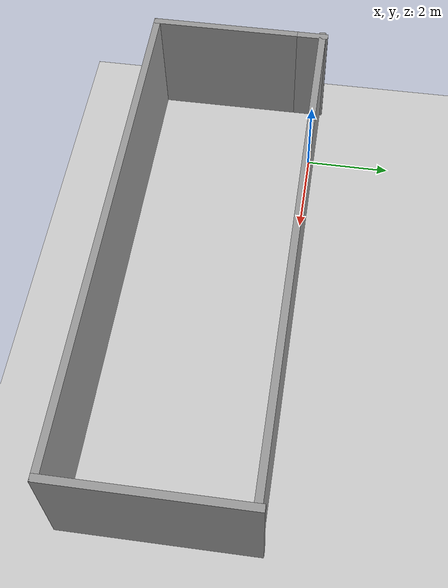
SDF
<sdf version="1.7">
 <world name="default">
  <light name="sun" type="directional">
   <pose>0 0 10 0 -0 0</pose>
   <diffuse>0.8 0.8 0.8 1</diffuse>
   <specular>0.2 0.2 0.2 1</specular>
   <attenuation>
    <range>1000</range>
    <constant>0.9</constant>
    <linear>0.01</linear>
    <quadratic>0.001</quadratic>
   </attenuation>
   <direction>-0.5 0.1 -0.9</direction>
   <spot><inner_angle>0</inner_angle><outer_angle>0</outer_angle><falloff>0</falloff></spot>
  </light>
  <model name="ground_plane">
   <static>1</static>
   <link name="link">
    <collision name="collision">
     <geometry><plane><normal>0 0 1</normal><size>100 100</size></plane></geometry>
     <surface>
      <contact><collide_bitmask>65535</collide_bitmask></contact>
      <friction><ode><mu>100</mu><mu2>50</mu2></ode></friction>
     </surface>
    </collision>
    <visual name="visual">
     <cast_shadows>0</cast_shadows>
     <geometry><plane><normal>0 0 1</normal><size>100 100</size></plane></geometry>
     <material>
      <script><uri>file://media/materials/scripts/gazebo.material</uri><name>Gazebo/Grey</name></script>
     </material>
    </visual>
   </link>
  </model>
  <gravity>0 0 -9.8</gravity>
  <magnetic_field>6e-06 2.3e-05 -4.2e-05</magnetic_field>
  <atmosphere type="adiabatic"/>
  <physics type="ode">
   <max_step_size>0.001</max_step_size>
   <real_time_factor>1</real_time_factor>
   <real_time_update_rate>1000</real_time_update_rate>
  </physics>
  <scene><ambient>0.4 0.4 0.4 1</ambient><background>0.7 0.7 0.7 1</background><shadows>1</shadows></scene>
  <audio><device>default</device></audio>
  <spherical_coordinates>
   <surface_model>EARTH_WGS84</surface_model>
   <latitude_deg>0</latitude_deg>
   <longitude_deg>0</longitude_deg>
   <elevation>0</elevation>
   <heading_deg>0</heading_deg>
  </spherical_coordinates>
  <model name="Untitled">
   <pose>5.09999 -1.4264 1.58281 0 -0 0</pose>
   <link name="Wall_0">
    <collision name="Wall_0_Collision">
     <geometry><box><size>3.25 0.15 2.5</size></box></geometry>
     <pose>0 0 1.25 0 -0 0</pose>
    </collision>
    <visual name="Wall_0_Visual">
     <pose>0 0 1.25 0 -0 0</pose>
     <geometry><box><size>3.25 0.15 2.5</size></box></geometry>
     <material>
      <script><uri>file://media/materials/scripts/gazebo.material</uri><name>Gazebo/Grey</name></script>
      <ambient>1 1 1 1</ambient>
     </material>
     <meta><layer>0</layer></meta>
    </visual>
    <pose>-5.40187 -0.6625 0 0 -0 -1.5708</pose>
   </link>
   <link name="Wall_1">
    <collision name="Wall_1_Collision">
     <geometry><box><size>11 0.15 2.5</size></box></geometry>
     <pose>0 0 1.25 0 -0 0</pose>
    </collision>
    <visual name="Wall_1_Visual">
     <pose>0 0 1.25 0 -0 0</pose>
     <geometry><box><size>11 0.15 2.5</size></box></geometry>
     <material>
      <script><uri>file://media/materials/scripts/gazebo.material</uri><name>Gazebo/Grey</name></script>
      <ambient>1 1 1 1</ambient>
     </material>
     <meta><layer>0</layer></meta>
    </visual>
    <pose>0.023131 -2.2125 0 0 -0 0</pose>
   </link>
   <link name="Wall_2">
    <collision name="Wall_2_Collision">
     <geometry><box><size>3.93505 0.15 2.5</size></box></geometry>
     <pose>0 0 1.25 0 -0 0</pose>
    </collision>
    <visual name="Wall_2_Visual">
     <pose>0 0 1.25 0 -0 0</pose>
     <geometry><box><size>3.93505 0.15 2.5</size></box></geometry>
     <material>
      <script><uri>file://media/materials/scripts/gazebo.material</uri><name>Gazebo/Grey</name></script>
      <ambient>1 1 1 1</ambient>
     </material>
     <meta><layer>0</layer></meta>
    </visual>
    <pose>5.44813 -0.319978 0 0 -0 1.5708</pose>
   </link>
   <link name="Wall_3">
    <collision name="Wall_3_Collision">
     <geometry><box><size>11 0.15 2.5</size></box></geometry>
     <pose>0 0 1.25 0 -0 0</pose>
    </collision>
    <visual name="Wall_3_Visual">
     <pose>0 0 1.25 0 -0 0</pose>
     <geometry><box><size>11 0.15 2.5</size></box></geometry>
     <material>
      <script><uri>file://media/materials/scripts/gazebo.material</uri><name>Gazebo/Grey</name></script>
      <ambient>1 1 1 1</ambient>
     </material>
     <meta><layer>0</layer></meta>
    </visual>
    <pose>-0.023131 1.52628 0 0 -0 3.14159</pose>
   </link>
   <link name="Wall_4">
    <collision name="Wall_4_Collision">
     <geometry><box><size>0.835045 0.15 2.5</size></box></geometry>
     <pose>0 0 1.25 0 -0 0</pose>
    </collision>
    <visual name="Wall_4_Visual">
     <pose>0 0 1.25 0 -0 0</pose>
     <geometry><box><size>0.835045 0.15 2.5</size></box></geometry>
     <material>
      <script><uri>file://media/materials/scripts/gazebo.material</uri><name>Gazebo/Grey</name></script>
      <ambient>1 1 1 1</ambient>
     </material>
     <meta><layer>0</layer></meta>
    </visual>
    <pose>-5.40187 1.23002 0 0 -0 -1.5708</pose>
   </link>
   <link name="Wall_5">
    <collision name="Wall_5_Collision">
     <geometry><box><size>0.15 0.15 2.5</size></box></geometry>
     <pose>0 0 1.25 0 -0 0</pose>
    </collision>
    <visual name="Wall_5_Visual">
     <pose>0 0 1.25 0 -0 0</pose>
     <geometry><box><size>0.15 0.15 2.5</size></box></geometry>
     <material>
      <script><uri>file://media/materials/scripts/gazebo.material</uri><name>Gazebo/Grey</name></script>
      <ambient>1 1 1 1</ambient>
     </material>
     <meta><layer>0</layer></meta>
    </visual>
    <pose>-5.40187 0.8875 0 0 -0 0</pose>
   </link>
   <static>1</static>
  </model>
 </world>
</sdf>
